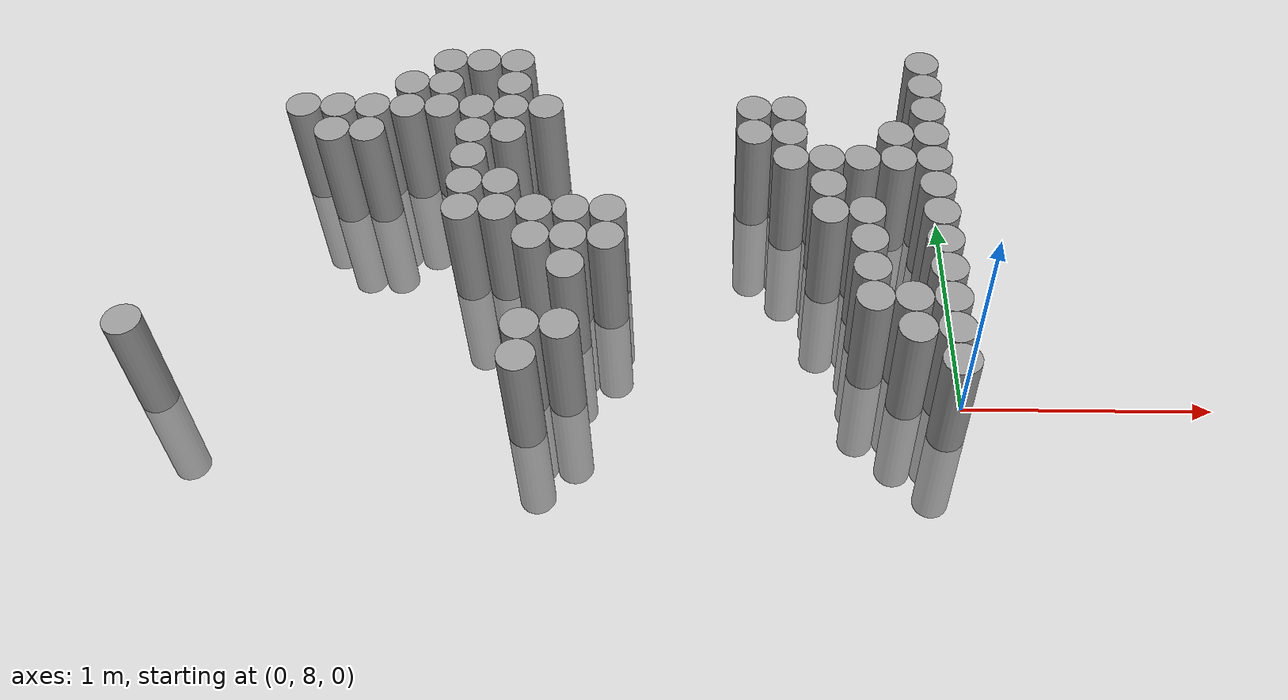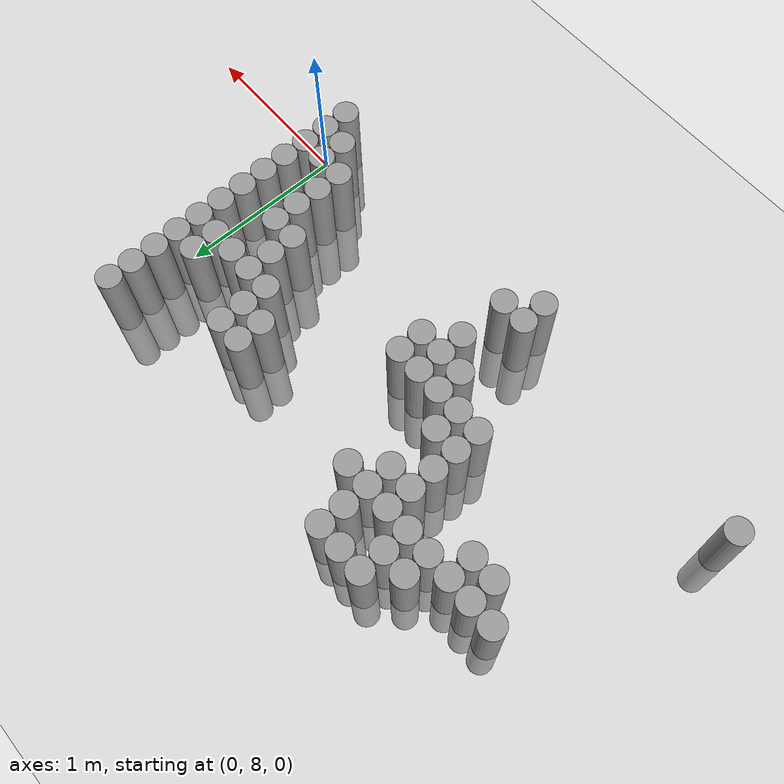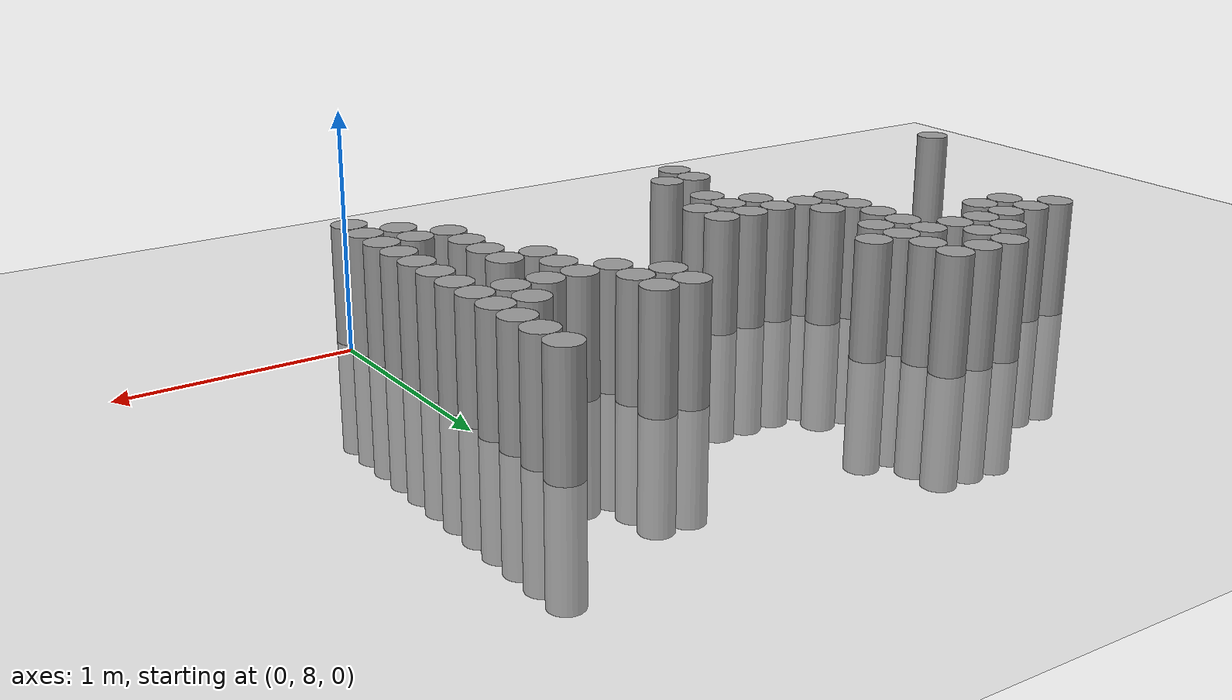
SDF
<sdf version="1.6">
 <world name="default">
  <model name="ground_plane">
   <static>1</static>
   <static>1</static>
   <link name="link">
    <collision name="collision">
     <geometry><plane><normal>0 0 1</normal><size>100 100</size></plane></geometry>
     <surface><friction><ode><mu>100</mu><mu2>50</mu2></ode></friction></surface>
    </collision>
    <visual name="visual">
     <cast_shadows>0</cast_shadows>
     <geometry><plane><normal>0 0 1</normal><size>100 100</size></plane></geometry>
     <material>
      <script><uri>file://media/materials/scripts/gazebo.material</uri><name>Gazebo/Grey</name></script>
     </material>
    </visual>
   </link>
  </model>
  <model name="unit_cylinder_170">
   <static>1</static>
   <pose>-3.225000 8.025000 0.000000 0.000000 0.000000 0.000000</pose>
   <link name="link">
    <inertial>
     <mass>1</mass>
     <inertia><ixx>0.145833</ixx><ixy>0</ixy><ixz>0</ixz><iyy>0.145833</iyy><iyz>0</iyz><izz>0.125</izz></inertia>
    </inertial>
    <collision name="collision">
     <geometry><cylinder><radius>0.075000</radius><length>1</length></cylinder></geometry>
    </collision>
    <visual name="visual">
     <geometry><cylinder><radius>0.075000</radius><length>1</length></cylinder></geometry>
     <material>
      <script><name>Gazebo/Grey</name><uri>file://media/materials/scripts/gazebo.material</uri></script>
     </material>
    </visual>
   </link>
  </model>
  <model name="unit_cylinder_180">
   <static>1</static>
   <pose>-2.775000 9.225000 0.000000 0.000000 0.000000 0.000000</pose>
   <link name="link">
    <inertial>
     <mass>1</mass>
     <inertia><ixx>0.145833</ixx><ixy>0</ixy><ixz>0</ixz><iyy>0.145833</iyy><iyz>0</iyz><izz>0.125</izz></inertia>
    </inertial>
    <collision name="collision">
     <geometry><cylinder><radius>0.075000</radius><length>1</length></cylinder></geometry>
    </collision>
    <visual name="visual">
     <geometry><cylinder><radius>0.075000</radius><length>1</length></cylinder></geometry>
     <material>
      <script><name>Gazebo/Grey</name><uri>file://media/materials/scripts/gazebo.material</uri></script>
     </material>
    </visual>
   </link>
  </model>
  <model name="unit_cylinder_183">
   <static>1</static>
   <pose>-2.625000 9.075000 0.000000 0.000000 0.000000 0.000000</pose>
   <link name="link">
    <inertial>
     <mass>1</mass>
     <inertia><ixx>0.145833</ixx><ixy>0</ixy><ixz>0</ixz><iyy>0.145833</iyy><iyz>0</iyz><izz>0.125</izz></inertia>
    </inertial>
    <collision name="collision">
     <geometry><cylinder><radius>0.075000</radius><length>1</length></cylinder></geometry>
    </collision>
    <visual name="visual">
     <geometry><cylinder><radius>0.075000</radius><length>1</length></cylinder></geometry>
     <material>
      <script><name>Gazebo/Grey</name><uri>file://media/materials/scripts/gazebo.material</uri></script>
     </material>
    </visual>
   </link>
  </model>
  <model name="unit_cylinder_184">
   <static>1</static>
   <pose>-2.625000 9.225000 0.000000 0.000000 0.000000 0.000000</pose>
   <link name="link">
    <inertial>
     <mass>1</mass>
     <inertia><ixx>0.145833</ixx><ixy>0</ixy><ixz>0</ixz><iyy>0.145833</iyy><iyz>0</iyz><izz>0.125</izz></inertia>
    </inertial>
    <collision name="collision">
     <geometry><cylinder><radius>0.075000</radius><length>1</length></cylinder></geometry>
    </collision>
    <visual name="visual">
     <geometry><cylinder><radius>0.075000</radius><length>1</length></cylinder></geometry>
     <material>
      <script><name>Gazebo/Grey</name><uri>file://media/materials/scripts/gazebo.material</uri></script>
     </material>
    </visual>
   </link>
  </model>
  <model name="unit_cylinder_186">
   <static>1</static>
   <pose>-2.475000 9.075000 0.000000 0.000000 0.000000 0.000000</pose>
   <link name="link">
    <inertial>
     <mass>1</mass>
     <inertia><ixx>0.145833</ixx><ixy>0</ixy><ixz>0</ixz><iyy>0.145833</iyy><iyz>0</iyz><izz>0.125</izz></inertia>
    </inertial>
    <collision name="collision">
     <geometry><cylinder><radius>0.075000</radius><length>1</length></cylinder></geometry>
    </collision>
    <visual name="visual">
     <geometry><cylinder><radius>0.075000</radius><length>1</length></cylinder></geometry>
     <material>
      <script><name>Gazebo/Grey</name><uri>file://media/materials/scripts/gazebo.material</uri></script>
     </material>
    </visual>
   </link>
  </model>
  <model name="unit_cylinder_187">
   <static>1</static>
   <pose>-2.475000 9.225000 0.000000 0.000000 0.000000 0.000000</pose>
   <link name="link">
    <inertial>
     <mass>1</mass>
     <inertia><ixx>0.145833</ixx><ixy>0</ixy><ixz>0</ixz><iyy>0.145833</iyy><iyz>0</iyz><izz>0.125</izz></inertia>
    </inertial>
    <collision name="collision">
     <geometry><cylinder><radius>0.075000</radius><length>1</length></cylinder></geometry>
    </collision>
    <visual name="visual">
     <geometry><cylinder><radius>0.075000</radius><length>1</length></cylinder></geometry>
     <material>
      <script><name>Gazebo/Grey</name><uri>file://media/materials/scripts/gazebo.material</uri></script>
     </material>
    </visual>
   </link>
  </model>
  <model name="unit_cylinder_192">
   <static>1</static>
   <pose>-2.325000 9.225000 0.000000 0.000000 0.000000 0.000000</pose>
   <link name="link">
    <inertial>
     <mass>1</mass>
     <inertia><ixx>0.145833</ixx><ixy>0</ixy><ixz>0</ixz><iyy>0.145833</iyy><iyz>0</iyz><izz>0.125</izz></inertia>
    </inertial>
    <collision name="collision">
     <geometry><cylinder><radius>0.075000</radius><length>1</length></cylinder></geometry>
    </collision>
    <visual name="visual">
     <geometry><cylinder><radius>0.075000</radius><length>1</length></cylinder></geometry>
     <material>
      <script><name>Gazebo/Grey</name><uri>file://media/materials/scripts/gazebo.material</uri></script>
     </material>
    </visual>
   </link>
  </model>
  <model name="unit_cylinder_193">
   <static>1</static>
   <pose>-2.325000 9.375000 0.000000 0.000000 0.000000 0.000000</pose>
   <link name="link">
    <inertial>
     <mass>1</mass>
     <inertia><ixx>0.145833</ixx><ixy>0</ixy><ixz>0</ixz><iyy>0.145833</iyy><iyz>0</iyz><izz>0.125</izz></inertia>
    </inertial>
    <collision name="collision">
     <geometry><cylinder><radius>0.075000</radius><length>1</length></cylinder></geometry>
    </collision>
    <visual name="visual">
     <geometry><cylinder><radius>0.075000</radius><length>1</length></cylinder></geometry>
     <material>
      <script><name>Gazebo/Grey</name><uri>file://media/materials/scripts/gazebo.material</uri></script>
     </material>
    </visual>
   </link>
  </model>
  <model name="unit_cylinder_201">
   <static>1</static>
   <pose>-2.175000 9.225000 0.000000 0.000000 0.000000 0.000000</pose>
   <link name="link">
    <inertial>
     <mass>1</mass>
     <inertia><ixx>0.145833</ixx><ixy>0</ixy><ixz>0</ixz><iyy>0.145833</iyy><iyz>0</iyz><izz>0.125</izz></inertia>
    </inertial>
    <collision name="collision">
     <geometry><cylinder><radius>0.075000</radius><length>1</length></cylinder></geometry>
    </collision>
    <visual name="visual">
     <geometry><cylinder><radius>0.075000</radius><length>1</length></cylinder></geometry>
     <material>
      <script><name>Gazebo/Grey</name><uri>file://media/materials/scripts/gazebo.material</uri></script>
     </material>
    </visual>
   </link>
  </model>
  <model name="unit_cylinder_202">
   <static>1</static>
   <pose>-2.175000 9.375000 0.000000 0.000000 0.000000 0.000000</pose>
   <link name="link">
    <inertial>
     <mass>1</mass>
     <inertia><ixx>0.145833</ixx><ixy>0</ixy><ixz>0</ixz><iyy>0.145833</iyy><iyz>0</iyz><izz>0.125</izz></inertia>
    </inertial>
    <collision name="collision">
     <geometry><cylinder><radius>0.075000</radius><length>1</length></cylinder></geometry>
    </collision>
    <visual name="visual">
     <geometry><cylinder><radius>0.075000</radius><length>1</length></cylinder></geometry>
     <material>
      <script><name>Gazebo/Grey</name><uri>file://media/materials/scripts/gazebo.material</uri></script>
     </material>
    </visual>
   </link>
  </model>
  <model name="unit_cylinder_203">
   <static>1</static>
   <pose>-2.175000 9.525000 0.000000 0.000000 0.000000 0.000000</pose>
   <link name="link">
    <inertial>
     <mass>1</mass>
     <inertia><ixx>0.145833</ixx><ixy>0</ixy><ixz>0</ixz><iyy>0.145833</iyy><iyz>0</iyz><izz>0.125</izz></inertia>
    </inertial>
    <collision name="collision">
     <geometry><cylinder><radius>0.075000</radius><length>1</length></cylinder></geometry>
    </collision>
    <visual name="visual">
     <geometry><cylinder><radius>0.075000</radius><length>1</length></cylinder></geometry>
     <material>
      <script><name>Gazebo/Grey</name><uri>file://media/materials/scripts/gazebo.material</uri></script>
     </material>
    </visual>
   </link>
  </model>
  <model name="unit_cylinder_210">
   <static>1</static>
   <pose>-2.025000 8.625000 0.000000 0.000000 0.000000 0.000000</pose>
   <link name="link">
    <inertial>
     <mass>1</mass>
     <inertia><ixx>0.145833</ixx><ixy>0</ixy><ixz>0</ixz><iyy>0.145833</iyy><iyz>0</iyz><izz>0.125</izz></inertia>
    </inertial>
    <collision name="collision">
     <geometry><cylinder><radius>0.075000</radius><length>1</length></cylinder></geometry>
    </collision>
    <visual name="visual">
     <geometry><cylinder><radius>0.075000</radius><length>1</length></cylinder></geometry>
     <material>
      <script><name>Gazebo/Grey</name><uri>file://media/materials/scripts/gazebo.material</uri></script>
     </material>
    </visual>
   </link>
  </model>
  <model name="unit_cylinder_211">
   <static>1</static>
   <pose>-2.025000 8.775000 0.000000 0.000000 0.000000 0.000000</pose>
   <link name="link">
    <inertial>
     <mass>1</mass>
     <inertia><ixx>0.145833</ixx><ixy>0</ixy><ixz>0</ixz><iyy>0.145833</iyy><iyz>0</iyz><izz>0.125</izz></inertia>
    </inertial>
    <collision name="collision">
     <geometry><cylinder><radius>0.075000</radius><length>1</length></cylinder></geometry>
    </collision>
    <visual name="visual">
     <geometry><cylinder><radius>0.075000</radius><length>1</length></cylinder></geometry>
     <material>
      <script><name>Gazebo/Grey</name><uri>file://media/materials/scripts/gazebo.material</uri></script>
     </material>
    </visual>
   </link>
  </model>
  <model name="unit_cylinder_212">
   <static>1</static>
   <pose>-2.025000 8.925000 0.000000 0.000000 0.000000 0.000000</pose>
   <link name="link">
    <inertial>
     <mass>1</mass>
     <inertia><ixx>0.145833</ixx><ixy>0</ixy><ixz>0</ixz><iyy>0.145833</iyy><iyz>0</iyz><izz>0.125</izz></inertia>
    </inertial>
    <collision name="collision">
     <geometry><cylinder><radius>0.075000</radius><length>1</length></cylinder></geometry>
    </collision>
    <visual name="visual">
     <geometry><cylinder><radius>0.075000</radius><length>1</length></cylinder></geometry>
     <material>
      <script><name>Gazebo/Grey</name><uri>file://media/materials/scripts/gazebo.material</uri></script>
     </material>
    </visual>
   </link>
  </model>
  <model name="unit_cylinder_213">
   <static>1</static>
   <pose>-2.025000 9.075000 0.000000 0.000000 0.000000 0.000000</pose>
   <link name="link">
    <inertial>
     <mass>1</mass>
     <inertia><ixx>0.145833</ixx><ixy>0</ixy><ixz>0</ixz><iyy>0.145833</iyy><iyz>0</iyz><izz>0.125</izz></inertia>
    </inertial>
    <collision name="collision">
     <geometry><cylinder><radius>0.075000</radius><length>1</length></cylinder></geometry>
    </collision>
    <visual name="visual">
     <geometry><cylinder><radius>0.075000</radius><length>1</length></cylinder></geometry>
     <material>
      <script><name>Gazebo/Grey</name><uri>file://media/materials/scripts/gazebo.material</uri></script>
     </material>
    </visual>
   </link>
  </model>
  <model name="unit_cylinder_214">
   <static>1</static>
   <pose>-2.025000 9.225000 0.000000 0.000000 0.000000 0.000000</pose>
   <link name="link">
    <inertial>
     <mass>1</mass>
     <inertia><ixx>0.145833</ixx><ixy>0</ixy><ixz>0</ixz><iyy>0.145833</iyy><iyz>0</iyz><izz>0.125</izz></inertia>
    </inertial>
    <collision name="collision">
     <geometry><cylinder><radius>0.075000</radius><length>1</length></cylinder></geometry>
    </collision>
    <visual name="visual">
     <geometry><cylinder><radius>0.075000</radius><length>1</length></cylinder></geometry>
     <material>
      <script><name>Gazebo/Grey</name><uri>file://media/materials/scripts/gazebo.material</uri></script>
     </material>
    </visual>
   </link>
  </model>
  <model name="unit_cylinder_215">
   <static>1</static>
   <pose>-2.025000 9.525000 0.000000 0.000000 0.000000 0.000000</pose>
   <link name="link">
    <inertial>
     <mass>1</mass>
     <inertia><ixx>0.145833</ixx><ixy>0</ixy><ixz>0</ixz><iyy>0.145833</iyy><iyz>0</iyz><izz>0.125</izz></inertia>
    </inertial>
    <collision name="collision">
     <geometry><cylinder><radius>0.075000</radius><length>1</length></cylinder></geometry>
    </collision>
    <visual name="visual">
     <geometry><cylinder><radius>0.075000</radius><length>1</length></cylinder></geometry>
     <material>
      <script><name>Gazebo/Grey</name><uri>file://media/materials/scripts/gazebo.material</uri></script>
     </material>
    </visual>
   </link>
  </model>
  <model name="unit_cylinder_222">
   <static>1</static>
   <pose>-1.875000 8.625000 0.000000 0.000000 0.000000 0.000000</pose>
   <link name="link">
    <inertial>
     <mass>1</mass>
     <inertia><ixx>0.145833</ixx><ixy>0</ixy><ixz>0</ixz><iyy>0.145833</iyy><iyz>0</iyz><izz>0.125</izz></inertia>
    </inertial>
    <collision name="collision">
     <geometry><cylinder><radius>0.075000</radius><length>1</length></cylinder></geometry>
    </collision>
    <visual name="visual">
     <geometry><cylinder><radius>0.075000</radius><length>1</length></cylinder></geometry>
     <material>
      <script><name>Gazebo/Grey</name><uri>file://media/materials/scripts/gazebo.material</uri></script>
     </material>
    </visual>
   </link>
  </model>
  <model name="unit_cylinder_223">
   <static>1</static>
   <pose>-1.875000 8.775000 0.000000 0.000000 0.000000 0.000000</pose>
   <link name="link">
    <inertial>
     <mass>1</mass>
     <inertia><ixx>0.145833</ixx><ixy>0</ixy><ixz>0</ixz><iyy>0.145833</iyy><iyz>0</iyz><izz>0.125</izz></inertia>
    </inertial>
    <collision name="collision">
     <geometry><cylinder><radius>0.075000</radius><length>1</length></cylinder></geometry>
    </collision>
    <visual name="visual">
     <geometry><cylinder><radius>0.075000</radius><length>1</length></cylinder></geometry>
     <material>
      <script><name>Gazebo/Grey</name><uri>file://media/materials/scripts/gazebo.material</uri></script>
     </material>
    </visual>
   </link>
  </model>
  <model name="unit_cylinder_224">
   <static>1</static>
   <pose>-1.875000 9.075000 0.000000 0.000000 0.000000 0.000000</pose>
   <link name="link">
    <inertial>
     <mass>1</mass>
     <inertia><ixx>0.145833</ixx><ixy>0</ixy><ixz>0</ixz><iyy>0.145833</iyy><iyz>0</iyz><izz>0.125</izz></inertia>
    </inertial>
    <collision name="collision">
     <geometry><cylinder><radius>0.075000</radius><length>1</length></cylinder></geometry>
    </collision>
    <visual name="visual">
     <geometry><cylinder><radius>0.075000</radius><length>1</length></cylinder></geometry>
     <material>
      <script><name>Gazebo/Grey</name><uri>file://media/materials/scripts/gazebo.material</uri></script>
     </material>
    </visual>
   </link>
  </model>
  <model name="unit_cylinder_225">
   <static>1</static>
   <pose>-1.875000 9.225000 0.000000 0.000000 0.000000 0.000000</pose>
   <link name="link">
    <inertial>
     <mass>1</mass>
     <inertia><ixx>0.145833</ixx><ixy>0</ixy><ixz>0</ixz><iyy>0.145833</iyy><iyz>0</iyz><izz>0.125</izz></inertia>
    </inertial>
    <collision name="collision">
     <geometry><cylinder><radius>0.075000</radius><length>1</length></cylinder></geometry>
    </collision>
    <visual name="visual">
     <geometry><cylinder><radius>0.075000</radius><length>1</length></cylinder></geometry>
     <material>
      <script><name>Gazebo/Grey</name><uri>file://media/materials/scripts/gazebo.material</uri></script>
     </material>
    </visual>
   </link>
  </model>
  <model name="unit_cylinder_226">
   <static>1</static>
   <pose>-1.875000 9.375000 0.000000 0.000000 0.000000 0.000000</pose>
   <link name="link">
    <inertial>
     <mass>1</mass>
     <inertia><ixx>0.145833</ixx><ixy>0</ixy><ixz>0</ixz><iyy>0.145833</iyy><iyz>0</iyz><izz>0.125</izz></inertia>
    </inertial>
    <collision name="collision">
     <geometry><cylinder><radius>0.075000</radius><length>1</length></cylinder></geometry>
    </collision>
    <visual name="visual">
     <geometry><cylinder><radius>0.075000</radius><length>1</length></cylinder></geometry>
     <material>
      <script><name>Gazebo/Grey</name><uri>file://media/materials/scripts/gazebo.material</uri></script>
     </material>
    </visual>
   </link>
  </model>
  <model name="unit_cylinder_227">
   <static>1</static>
   <pose>-1.875000 9.525000 0.000000 0.000000 0.000000 0.000000</pose>
   <link name="link">
    <inertial>
     <mass>1</mass>
     <inertia><ixx>0.145833</ixx><ixy>0</ixy><ixz>0</ixz><iyy>0.145833</iyy><iyz>0</iyz><izz>0.125</izz></inertia>
    </inertial>
    <collision name="collision">
     <geometry><cylinder><radius>0.075000</radius><length>1</length></cylinder></geometry>
    </collision>
    <visual name="visual">
     <geometry><cylinder><radius>0.075000</radius><length>1</length></cylinder></geometry>
     <material>
      <script><name>Gazebo/Grey</name><uri>file://media/materials/scripts/gazebo.material</uri></script>
     </material>
    </visual>
   </link>
  </model>
  <model name="unit_cylinder_232">
   <static>1</static>
   <pose>-1.725000 7.875000 0.000000 0.000000 0.000000 0.000000</pose>
   <link name="link">
    <inertial>
     <mass>1</mass>
     <inertia><ixx>0.145833</ixx><ixy>0</ixy><ixz>0</ixz><iyy>0.145833</iyy><iyz>0</iyz><izz>0.125</izz></inertia>
    </inertial>
    <collision name="collision">
     <geometry><cylinder><radius>0.075000</radius><length>1</length></cylinder></geometry>
    </collision>
    <visual name="visual">
     <geometry><cylinder><radius>0.075000</radius><length>1</length></cylinder></geometry>
     <material>
      <script><name>Gazebo/Grey</name><uri>file://media/materials/scripts/gazebo.material</uri></script>
     </material>
    </visual>
   </link>
  </model>
  <model name="unit_cylinder_233">
   <static>1</static>
   <pose>-1.725000 8.025000 0.000000 0.000000 0.000000 0.000000</pose>
   <link name="link">
    <inertial>
     <mass>1</mass>
     <inertia><ixx>0.145833</ixx><ixy>0</ixy><ixz>0</ixz><iyy>0.145833</iyy><iyz>0</iyz><izz>0.125</izz></inertia>
    </inertial>
    <collision name="collision">
     <geometry><cylinder><radius>0.075000</radius><length>1</length></cylinder></geometry>
    </collision>
    <visual name="visual">
     <geometry><cylinder><radius>0.075000</radius><length>1</length></cylinder></geometry>
     <material>
      <script><name>Gazebo/Grey</name><uri>file://media/materials/scripts/gazebo.material</uri></script>
     </material>
    </visual>
   </link>
  </model>
  <model name="unit_cylinder_234">
   <static>1</static>
   <pose>-1.725000 8.475000 0.000000 0.000000 0.000000 0.000000</pose>
   <link name="link">
    <inertial>
     <mass>1</mass>
     <inertia><ixx>0.145833</ixx><ixy>0</ixy><ixz>0</ixz><iyy>0.145833</iyy><iyz>0</iyz><izz>0.125</izz></inertia>
    </inertial>
    <collision name="collision">
     <geometry><cylinder><radius>0.075000</radius><length>1</length></cylinder></geometry>
    </collision>
    <visual name="visual">
     <geometry><cylinder><radius>0.075000</radius><length>1</length></cylinder></geometry>
     <material>
      <script><name>Gazebo/Grey</name><uri>file://media/materials/scripts/gazebo.material</uri></script>
     </material>
    </visual>
   </link>
  </model>
  <model name="unit_cylinder_235">
   <static>1</static>
   <pose>-1.725000 8.625000 0.000000 0.000000 0.000000 0.000000</pose>
   <link name="link">
    <inertial>
     <mass>1</mass>
     <inertia><ixx>0.145833</ixx><ixy>0</ixy><ixz>0</ixz><iyy>0.145833</iyy><iyz>0</iyz><izz>0.125</izz></inertia>
    </inertial>
    <collision name="collision">
     <geometry><cylinder><radius>0.075000</radius><length>1</length></cylinder></geometry>
    </collision>
    <visual name="visual">
     <geometry><cylinder><radius>0.075000</radius><length>1</length></cylinder></geometry>
     <material>
      <script><name>Gazebo/Grey</name><uri>file://media/materials/scripts/gazebo.material</uri></script>
     </material>
    </visual>
   </link>
  </model>
  <model name="unit_cylinder_236">
   <static>1</static>
   <pose>-1.725000 9.225000 0.000000 0.000000 0.000000 0.000000</pose>
   <link name="link">
    <inertial>
     <mass>1</mass>
     <inertia><ixx>0.145833</ixx><ixy>0</ixy><ixz>0</ixz><iyy>0.145833</iyy><iyz>0</iyz><izz>0.125</izz></inertia>
    </inertial>
    <collision name="collision">
     <geometry><cylinder><radius>0.075000</radius><length>1</length></cylinder></geometry>
    </collision>
    <visual name="visual">
     <geometry><cylinder><radius>0.075000</radius><length>1</length></cylinder></geometry>
     <material>
      <script><name>Gazebo/Grey</name><uri>file://media/materials/scripts/gazebo.material</uri></script>
     </material>
    </visual>
   </link>
  </model>
  <model name="unit_cylinder_238">
   <static>1</static>
   <pose>-1.575000 8.025000 0.000000 0.000000 0.000000 0.000000</pose>
   <link name="link">
    <inertial>
     <mass>1</mass>
     <inertia><ixx>0.145833</ixx><ixy>0</ixy><ixz>0</ixz><iyy>0.145833</iyy><iyz>0</iyz><izz>0.125</izz></inertia>
    </inertial>
    <collision name="collision">
     <geometry><cylinder><radius>0.075000</radius><length>1</length></cylinder></geometry>
    </collision>
    <visual name="visual">
     <geometry><cylinder><radius>0.075000</radius><length>1</length></cylinder></geometry>
     <material>
      <script><name>Gazebo/Grey</name><uri>file://media/materials/scripts/gazebo.material</uri></script>
     </material>
    </visual>
   </link>
  </model>
  <model name="unit_cylinder_239">
   <static>1</static>
   <pose>-1.575000 8.325000 0.000000 0.000000 0.000000 0.000000</pose>
   <link name="link">
    <inertial>
     <mass>1</mass>
     <inertia><ixx>0.145833</ixx><ixy>0</ixy><ixz>0</ixz><iyy>0.145833</iyy><iyz>0</iyz><izz>0.125</izz></inertia>
    </inertial>
    <collision name="collision">
     <geometry><cylinder><radius>0.075000</radius><length>1</length></cylinder></geometry>
    </collision>
    <visual name="visual">
     <geometry><cylinder><radius>0.075000</radius><length>1</length></cylinder></geometry>
     <material>
      <script><name>Gazebo/Grey</name><uri>file://media/materials/scripts/gazebo.material</uri></script>
     </material>
    </visual>
   </link>
  </model>
  <model name="unit_cylinder_240">
   <static>1</static>
   <pose>-1.575000 8.475000 0.000000 0.000000 0.000000 0.000000</pose>
   <link name="link">
    <inertial>
     <mass>1</mass>
     <inertia><ixx>0.145833</ixx><ixy>0</ixy><ixz>0</ixz><iyy>0.145833</iyy><iyz>0</iyz><izz>0.125</izz></inertia>
    </inertial>
    <collision name="collision">
     <geometry><cylinder><radius>0.075000</radius><length>1</length></cylinder></geometry>
    </collision>
    <visual name="visual">
     <geometry><cylinder><radius>0.075000</radius><length>1</length></cylinder></geometry>
     <material>
      <script><name>Gazebo/Grey</name><uri>file://media/materials/scripts/gazebo.material</uri></script>
     </material>
    </visual>
   </link>
  </model>
  <model name="unit_cylinder_241">
   <static>1</static>
   <pose>-1.575000 8.625000 0.000000 0.000000 0.000000 0.000000</pose>
   <link name="link">
    <inertial>
     <mass>1</mass>
     <inertia><ixx>0.145833</ixx><ixy>0</ixy><ixz>0</ixz><iyy>0.145833</iyy><iyz>0</iyz><izz>0.125</izz></inertia>
    </inertial>
    <collision name="collision">
     <geometry><cylinder><radius>0.075000</radius><length>1</length></cylinder></geometry>
    </collision>
    <visual name="visual">
     <geometry><cylinder><radius>0.075000</radius><length>1</length></cylinder></geometry>
     <material>
      <script><name>Gazebo/Grey</name><uri>file://media/materials/scripts/gazebo.material</uri></script>
     </material>
    </visual>
   </link>
  </model>
  <model name="unit_cylinder_242">
   <static>1</static>
   <pose>-1.425000 8.475000 0.000000 0.000000 0.000000 0.000000</pose>
   <link name="link">
    <inertial>
     <mass>1</mass>
     <inertia><ixx>0.145833</ixx><ixy>0</ixy><ixz>0</ixz><iyy>0.145833</iyy><iyz>0</iyz><izz>0.125</izz></inertia>
    </inertial>
    <collision name="collision">
     <geometry><cylinder><radius>0.075000</radius><length>1</length></cylinder></geometry>
    </collision>
    <visual name="visual">
     <geometry><cylinder><radius>0.075000</radius><length>1</length></cylinder></geometry>
     <material>
      <script><name>Gazebo/Grey</name><uri>file://media/materials/scripts/gazebo.material</uri></script>
     </material>
    </visual>
   </link>
  </model>
  <model name="unit_cylinder_243">
   <static>1</static>
   <pose>-1.425000 8.625000 0.000000 0.000000 0.000000 0.000000</pose>
   <link name="link">
    <inertial>
     <mass>1</mass>
     <inertia><ixx>0.145833</ixx><ixy>0</ixy><ixz>0</ixz><iyy>0.145833</iyy><iyz>0</iyz><izz>0.125</izz></inertia>
    </inertial>
    <collision name="collision">
     <geometry><cylinder><radius>0.075000</radius><length>1</length></cylinder></geometry>
    </collision>
    <visual name="visual">
     <geometry><cylinder><radius>0.075000</radius><length>1</length></cylinder></geometry>
     <material>
      <script><name>Gazebo/Grey</name><uri>file://media/materials/scripts/gazebo.material</uri></script>
     </material>
    </visual>
   </link>
  </model>
  <model name="unit_cylinder_248">
   <static>1</static>
   <pose>-0.825000 9.075000 0.000000 0.000000 0.000000 0.000000</pose>
   <link name="link">
    <inertial>
     <mass>1</mass>
     <inertia><ixx>0.145833</ixx><ixy>0</ixy><ixz>0</ixz><iyy>0.145833</iyy><iyz>0</iyz><izz>0.125</izz></inertia>
    </inertial>
    <collision name="collision">
     <geometry><cylinder><radius>0.075000</radius><length>1</length></cylinder></geometry>
    </collision>
    <visual name="visual">
     <geometry><cylinder><radius>0.075000</radius><length>1</length></cylinder></geometry>
     <material>
      <script><name>Gazebo/Grey</name><uri>file://media/materials/scripts/gazebo.material</uri></script>
     </material>
    </visual>
   </link>
  </model>
  <model name="unit_cylinder_249">
   <static>1</static>
   <pose>-0.825000 9.225000 0.000000 0.000000 0.000000 0.000000</pose>
   <link name="link">
    <inertial>
     <mass>1</mass>
     <inertia><ixx>0.145833</ixx><ixy>0</ixy><ixz>0</ixz><iyy>0.145833</iyy><iyz>0</iyz><izz>0.125</izz></inertia>
    </inertial>
    <collision name="collision">
     <geometry><cylinder><radius>0.075000</radius><length>1</length></cylinder></geometry>
    </collision>
    <visual name="visual">
     <geometry><cylinder><radius>0.075000</radius><length>1</length></cylinder></geometry>
     <material>
      <script><name>Gazebo/Grey</name><uri>file://media/materials/scripts/gazebo.material</uri></script>
     </material>
    </visual>
   </link>
  </model>
  <model name="unit_cylinder_255">
   <static>1</static>
   <pose>-0.675000 8.925000 0.000000 0.000000 0.000000 0.000000</pose>
   <link name="link">
    <inertial>
     <mass>1</mass>
     <inertia><ixx>0.145833</ixx><ixy>0</ixy><ixz>0</ixz><iyy>0.145833</iyy><iyz>0</iyz><izz>0.125</izz></inertia>
    </inertial>
    <collision name="collision">
     <geometry><cylinder><radius>0.075000</radius><length>1</length></cylinder></geometry>
    </collision>
    <visual name="visual">
     <geometry><cylinder><radius>0.075000</radius><length>1</length></cylinder></geometry>
     <material>
      <script><name>Gazebo/Grey</name><uri>file://media/materials/scripts/gazebo.material</uri></script>
     </material>
    </visual>
   </link>
  </model>
  <model name="unit_cylinder_256">
   <static>1</static>
   <pose>-0.675000 9.075000 0.000000 0.000000 0.000000 0.000000</pose>
   <link name="link">
    <inertial>
     <mass>1</mass>
     <inertia><ixx>0.145833</ixx><ixy>0</ixy><ixz>0</ixz><iyy>0.145833</iyy><iyz>0</iyz><izz>0.125</izz></inertia>
    </inertial>
    <collision name="collision">
     <geometry><cylinder><radius>0.075000</radius><length>1</length></cylinder></geometry>
    </collision>
    <visual name="visual">
     <geometry><cylinder><radius>0.075000</radius><length>1</length></cylinder></geometry>
     <material>
      <script><name>Gazebo/Grey</name><uri>file://media/materials/scripts/gazebo.material</uri></script>
     </material>
    </visual>
   </link>
  </model>
  <model name="unit_cylinder_257">
   <static>1</static>
   <pose>-0.675000 9.225000 0.000000 0.000000 0.000000 0.000000</pose>
   <link name="link">
    <inertial>
     <mass>1</mass>
     <inertia><ixx>0.145833</ixx><ixy>0</ixy><ixz>0</ixz><iyy>0.145833</iyy><iyz>0</iyz><izz>0.125</izz></inertia>
    </inertial>
    <collision name="collision">
     <geometry><cylinder><radius>0.075000</radius><length>1</length></cylinder></geometry>
    </collision>
    <visual name="visual">
     <geometry><cylinder><radius>0.075000</radius><length>1</length></cylinder></geometry>
     <material>
      <script><name>Gazebo/Grey</name><uri>file://media/materials/scripts/gazebo.material</uri></script>
     </material>
    </visual>
   </link>
  </model>
  <model name="unit_cylinder_260">
   <static>1</static>
   <pose>-0.525000 8.625000 0.000000 0.000000 0.000000 0.000000</pose>
   <link name="link">
    <inertial>
     <mass>1</mass>
     <inertia><ixx>0.145833</ixx><ixy>0</ixy><ixz>0</ixz><iyy>0.145833</iyy><iyz>0</iyz><izz>0.125</izz></inertia>
    </inertial>
    <collision name="collision">
     <geometry><cylinder><radius>0.075000</radius><length>1</length></cylinder></geometry>
    </collision>
    <visual name="visual">
     <geometry><cylinder><radius>0.075000</radius><length>1</length></cylinder></geometry>
     <material>
      <script><name>Gazebo/Grey</name><uri>file://media/materials/scripts/gazebo.material</uri></script>
     </material>
    </visual>
   </link>
  </model>
  <model name="unit_cylinder_261">
   <static>1</static>
   <pose>-0.525000 8.775000 0.000000 0.000000 0.000000 0.000000</pose>
   <link name="link">
    <inertial>
     <mass>1</mass>
     <inertia><ixx>0.145833</ixx><ixy>0</ixy><ixz>0</ixz><iyy>0.145833</iyy><iyz>0</iyz><izz>0.125</izz></inertia>
    </inertial>
    <collision name="collision">
     <geometry><cylinder><radius>0.075000</radius><length>1</length></cylinder></geometry>
    </collision>
    <visual name="visual">
     <geometry><cylinder><radius>0.075000</radius><length>1</length></cylinder></geometry>
     <material>
      <script><name>Gazebo/Grey</name><uri>file://media/materials/scripts/gazebo.material</uri></script>
     </material>
    </visual>
   </link>
  </model>
  <model name="unit_cylinder_262">
   <static>1</static>
   <pose>-0.525000 8.925000 0.000000 0.000000 0.000000 0.000000</pose>
   <link name="link">
    <inertial>
     <mass>1</mass>
     <inertia><ixx>0.145833</ixx><ixy>0</ixy><ixz>0</ixz><iyy>0.145833</iyy><iyz>0</iyz><izz>0.125</izz></inertia>
    </inertial>
    <collision name="collision">
     <geometry><cylinder><radius>0.075000</radius><length>1</length></cylinder></geometry>
    </collision>
    <visual name="visual">
     <geometry><cylinder><radius>0.075000</radius><length>1</length></cylinder></geometry>
     <material>
      <script><name>Gazebo/Grey</name><uri>file://media/materials/scripts/gazebo.material</uri></script>
     </material>
    </visual>
   </link>
  </model>
  <model name="unit_cylinder_266">
   <static>1</static>
   <pose>-0.375000 8.175000 0.000000 0.000000 0.000000 0.000000</pose>
   <link name="link">
    <inertial>
     <mass>1</mass>
     <inertia><ixx>0.145833</ixx><ixy>0</ixy><ixz>0</ixz><iyy>0.145833</iyy><iyz>0</iyz><izz>0.125</izz></inertia>
    </inertial>
    <collision name="collision">
     <geometry><cylinder><radius>0.075000</radius><length>1</length></cylinder></geometry>
    </collision>
    <visual name="visual">
     <geometry><cylinder><radius>0.075000</radius><length>1</length></cylinder></geometry>
     <material>
      <script><name>Gazebo/Grey</name><uri>file://media/materials/scripts/gazebo.material</uri></script>
     </material>
    </visual>
   </link>
  </model>
  <model name="unit_cylinder_267">
   <static>1</static>
   <pose>-0.375000 8.325000 0.000000 0.000000 0.000000 0.000000</pose>
   <link name="link">
    <inertial>
     <mass>1</mass>
     <inertia><ixx>0.145833</ixx><ixy>0</ixy><ixz>0</ixz><iyy>0.145833</iyy><iyz>0</iyz><izz>0.125</izz></inertia>
    </inertial>
    <collision name="collision">
     <geometry><cylinder><radius>0.075000</radius><length>1</length></cylinder></geometry>
    </collision>
    <visual name="visual">
     <geometry><cylinder><radius>0.075000</radius><length>1</length></cylinder></geometry>
     <material>
      <script><name>Gazebo/Grey</name><uri>file://media/materials/scripts/gazebo.material</uri></script>
     </material>
    </visual>
   </link>
  </model>
  <model name="unit_cylinder_268">
   <static>1</static>
   <pose>-0.375000 8.475000 0.000000 0.000000 0.000000 0.000000</pose>
   <link name="link">
    <inertial>
     <mass>1</mass>
     <inertia><ixx>0.145833</ixx><ixy>0</ixy><ixz>0</ixz><iyy>0.145833</iyy><iyz>0</iyz><izz>0.125</izz></inertia>
    </inertial>
    <collision name="collision">
     <geometry><cylinder><radius>0.075000</radius><length>1</length></cylinder></geometry>
    </collision>
    <visual name="visual">
     <geometry><cylinder><radius>0.075000</radius><length>1</length></cylinder></geometry>
     <material>
      <script><name>Gazebo/Grey</name><uri>file://media/materials/scripts/gazebo.material</uri></script>
     </material>
    </visual>
   </link>
  </model>
  <model name="unit_cylinder_269">
   <static>1</static>
   <pose>-0.375000 8.625000 0.000000 0.000000 0.000000 0.000000</pose>
   <link name="link">
    <inertial>
     <mass>1</mass>
     <inertia><ixx>0.145833</ixx><ixy>0</ixy><ixz>0</ixz><iyy>0.145833</iyy><iyz>0</iyz><izz>0.125</izz></inertia>
    </inertial>
    <collision name="collision">
     <geometry><cylinder><radius>0.075000</radius><length>1</length></cylinder></geometry>
    </collision>
    <visual name="visual">
     <geometry><cylinder><radius>0.075000</radius><length>1</length></cylinder></geometry>
     <material>
      <script><name>Gazebo/Grey</name><uri>file://media/materials/scripts/gazebo.material</uri></script>
     </material>
    </visual>
   </link>
  </model>
  <model name="unit_cylinder_270">
   <static>1</static>
   <pose>-0.375000 8.925000 0.000000 0.000000 0.000000 0.000000</pose>
   <link name="link">
    <inertial>
     <mass>1</mass>
     <inertia><ixx>0.145833</ixx><ixy>0</ixy><ixz>0</ixz><iyy>0.145833</iyy><iyz>0</iyz><izz>0.125</izz></inertia>
    </inertial>
    <collision name="collision">
     <geometry><cylinder><radius>0.075000</radius><length>1</length></cylinder></geometry>
    </collision>
    <visual name="visual">
     <geometry><cylinder><radius>0.075000</radius><length>1</length></cylinder></geometry>
     <material>
      <script><name>Gazebo/Grey</name><uri>file://media/materials/scripts/gazebo.material</uri></script>
     </material>
    </visual>
   </link>
  </model>
  <model name="unit_cylinder_278">
   <static>1</static>
   <pose>-0.225000 8.025000 0.000000 0.000000 0.000000 0.000000</pose>
   <link name="link">
    <inertial>
     <mass>1</mass>
     <inertia><ixx>0.145833</ixx><ixy>0</ixy><ixz>0</ixz><iyy>0.145833</iyy><iyz>0</iyz><izz>0.125</izz></inertia>
    </inertial>
    <collision name="collision">
     <geometry><cylinder><radius>0.075000</radius><length>1</length></cylinder></geometry>
    </collision>
    <visual name="visual">
     <geometry><cylinder><radius>0.075000</radius><length>1</length></cylinder></geometry>
     <material>
      <script><name>Gazebo/Grey</name><uri>file://media/materials/scripts/gazebo.material</uri></script>
     </material>
    </visual>
   </link>
  </model>
  <model name="unit_cylinder_279">
   <static>1</static>
   <pose>-0.225000 8.175000 0.000000 0.000000 0.000000 0.000000</pose>
   <link name="link">
    <inertial>
     <mass>1</mass>
     <inertia><ixx>0.145833</ixx><ixy>0</ixy><ixz>0</ixz><iyy>0.145833</iyy><iyz>0</iyz><izz>0.125</izz></inertia>
    </inertial>
    <collision name="collision">
     <geometry><cylinder><radius>0.075000</radius><length>1</length></cylinder></geometry>
    </collision>
    <visual name="visual">
     <geometry><cylinder><radius>0.075000</radius><length>1</length></cylinder></geometry>
     <material>
      <script><name>Gazebo/Grey</name><uri>file://media/materials/scripts/gazebo.material</uri></script>
     </material>
    </visual>
   </link>
  </model>
  <model name="unit_cylinder_280">
   <static>1</static>
   <pose>-0.225000 8.925000 0.000000 0.000000 0.000000 0.000000</pose>
   <link name="link">
    <inertial>
     <mass>1</mass>
     <inertia><ixx>0.145833</ixx><ixy>0</ixy><ixz>0</ixz><iyy>0.145833</iyy><iyz>0</iyz><izz>0.125</izz></inertia>
    </inertial>
    <collision name="collision">
     <geometry><cylinder><radius>0.075000</radius><length>1</length></cylinder></geometry>
    </collision>
    <visual name="visual">
     <geometry><cylinder><radius>0.075000</radius><length>1</length></cylinder></geometry>
     <material>
      <script><name>Gazebo/Grey</name><uri>file://media/materials/scripts/gazebo.material</uri></script>
     </material>
    </visual>
   </link>
  </model>
  <model name="unit_cylinder_281">
   <static>1</static>
   <pose>-0.225000 9.075000 0.000000 0.000000 0.000000 0.000000</pose>
   <link name="link">
    <inertial>
     <mass>1</mass>
     <inertia><ixx>0.145833</ixx><ixy>0</ixy><ixz>0</ixz><iyy>0.145833</iyy><iyz>0</iyz><izz>0.125</izz></inertia>
    </inertial>
    <collision name="collision">
     <geometry><cylinder><radius>0.075000</radius><length>1</length></cylinder></geometry>
    </collision>
    <visual name="visual">
     <geometry><cylinder><radius>0.075000</radius><length>1</length></cylinder></geometry>
     <material>
      <script><name>Gazebo/Grey</name><uri>file://media/materials/scripts/gazebo.material</uri></script>
     </material>
    </visual>
   </link>
  </model>
  <model name="unit_cylinder_300">
   <static>1</static>
   <pose>-0.075000 7.875000 0.000000 0.000000 0.000000 0.000000</pose>
   <link name="link">
    <inertial>
     <mass>1</mass>
     <inertia><ixx>0.145833</ixx><ixy>0</ixy><ixz>0</ixz><iyy>0.145833</iyy><iyz>0</iyz><izz>0.125</izz></inertia>
    </inertial>
    <collision name="collision">
     <geometry><cylinder><radius>0.075000</radius><length>1</length></cylinder></geometry>
    </collision>
    <visual name="visual">
     <geometry><cylinder><radius>0.075000</radius><length>1</length></cylinder></geometry>
     <material>
      <script><name>Gazebo/Grey</name><uri>file://media/materials/scripts/gazebo.material</uri></script>
     </material>
    </visual>
   </link>
  </model>
  <model name="unit_cylinder_301">
   <static>1</static>
   <pose>-0.075000 8.025000 0.000000 0.000000 0.000000 0.000000</pose>
   <link name="link">
    <inertial>
     <mass>1</mass>
     <inertia><ixx>0.145833</ixx><ixy>0</ixy><ixz>0</ixz><iyy>0.145833</iyy><iyz>0</iyz><izz>0.125</izz></inertia>
    </inertial>
    <collision name="collision">
     <geometry><cylinder><radius>0.075000</radius><length>1</length></cylinder></geometry>
    </collision>
    <visual name="visual">
     <geometry><cylinder><radius>0.075000</radius><length>1</length></cylinder></geometry>
     <material>
      <script><name>Gazebo/Grey</name><uri>file://media/materials/scripts/gazebo.material</uri></script>
     </material>
    </visual>
   </link>
  </model>
  <model name="unit_cylinder_302">
   <static>1</static>
   <pose>-0.075000 8.175000 0.000000 0.000000 0.000000 0.000000</pose>
   <link name="link">
    <inertial>
     <mass>1</mass>
     <inertia><ixx>0.145833</ixx><ixy>0</ixy><ixz>0</ixz><iyy>0.145833</iyy><iyz>0</iyz><izz>0.125</izz></inertia>
    </inertial>
    <collision name="collision">
     <geometry><cylinder><radius>0.075000</radius><length>1</length></cylinder></geometry>
    </collision>
    <visual name="visual">
     <geometry><cylinder><radius>0.075000</radius><length>1</length></cylinder></geometry>
     <material>
      <script><name>Gazebo/Grey</name><uri>file://media/materials/scripts/gazebo.material</uri></script>
     </material>
    </visual>
   </link>
  </model>
  <model name="unit_cylinder_303">
   <static>1</static>
   <pose>-0.075000 8.325000 0.000000 0.000000 0.000000 0.000000</pose>
   <link name="link">
    <inertial>
     <mass>1</mass>
     <inertia><ixx>0.145833</ixx><ixy>0</ixy><ixz>0</ixz><iyy>0.145833</iyy><iyz>0</iyz><izz>0.125</izz></inertia>
    </inertial>
    <collision name="collision">
     <geometry><cylinder><radius>0.075000</radius><length>1</length></cylinder></geometry>
    </collision>
    <visual name="visual">
     <geometry><cylinder><radius>0.075000</radius><length>1</length></cylinder></geometry>
     <material>
      <script><name>Gazebo/Grey</name><uri>file://media/materials/scripts/gazebo.material</uri></script>
     </material>
    </visual>
   </link>
  </model>
  <model name="unit_cylinder_304">
   <static>1</static>
   <pose>-0.075000 8.475000 0.000000 0.000000 0.000000 0.000000</pose>
   <link name="link">
    <inertial>
     <mass>1</mass>
     <inertia><ixx>0.145833</ixx><ixy>0</ixy><ixz>0</ixz><iyy>0.145833</iyy><iyz>0</iyz><izz>0.125</izz></inertia>
    </inertial>
    <collision name="collision">
     <geometry><cylinder><radius>0.075000</radius><length>1</length></cylinder></geometry>
    </collision>
    <visual name="visual">
     <geometry><cylinder><radius>0.075000</radius><length>1</length></cylinder></geometry>
     <material>
      <script><name>Gazebo/Grey</name><uri>file://media/materials/scripts/gazebo.material</uri></script>
     </material>
    </visual>
   </link>
  </model>
  <model name="unit_cylinder_305">
   <static>1</static>
   <pose>-0.075000 8.625000 0.000000 0.000000 0.000000 0.000000</pose>
   <link name="link">
    <inertial>
     <mass>1</mass>
     <inertia><ixx>0.145833</ixx><ixy>0</ixy><ixz>0</ixz><iyy>0.145833</iyy><iyz>0</iyz><izz>0.125</izz></inertia>
    </inertial>
    <collision name="collision">
     <geometry><cylinder><radius>0.075000</radius><length>1</length></cylinder></geometry>
    </collision>
    <visual name="visual">
     <geometry><cylinder><radius>0.075000</radius><length>1</length></cylinder></geometry>
     <material>
      <script><name>Gazebo/Grey</name><uri>file://media/materials/scripts/gazebo.material</uri></script>
     </material>
    </visual>
   </link>
  </model>
  <model name="unit_cylinder_306">
   <static>1</static>
   <pose>-0.075000 8.775000 0.000000 0.000000 0.000000 0.000000</pose>
   <link name="link">
    <inertial>
     <mass>1</mass>
     <inertia><ixx>0.145833</ixx><ixy>0</ixy><ixz>0</ixz><iyy>0.145833</iyy><iyz>0</iyz><izz>0.125</izz></inertia>
    </inertial>
    <collision name="collision">
     <geometry><cylinder><radius>0.075000</radius><length>1</length></cylinder></geometry>
    </collision>
    <visual name="visual">
     <geometry><cylinder><radius>0.075000</radius><length>1</length></cylinder></geometry>
     <material>
      <script><name>Gazebo/Grey</name><uri>file://media/materials/scripts/gazebo.material</uri></script>
     </material>
    </visual>
   </link>
  </model>
  <model name="unit_cylinder_307">
   <static>1</static>
   <pose>-0.075000 8.925000 0.000000 0.000000 0.000000 0.000000</pose>
   <link name="link">
    <inertial>
     <mass>1</mass>
     <inertia><ixx>0.145833</ixx><ixy>0</ixy><ixz>0</ixz><iyy>0.145833</iyy><iyz>0</iyz><izz>0.125</izz></inertia>
    </inertial>
    <collision name="collision">
     <geometry><cylinder><radius>0.075000</radius><length>1</length></cylinder></geometry>
    </collision>
    <visual name="visual">
     <geometry><cylinder><radius>0.075000</radius><length>1</length></cylinder></geometry>
     <material>
      <script><name>Gazebo/Grey</name><uri>file://media/materials/scripts/gazebo.material</uri></script>
     </material>
    </visual>
   </link>
  </model>
  <model name="unit_cylinder_308">
   <static>1</static>
   <pose>-0.075000 9.075000 0.000000 0.000000 0.000000 0.000000</pose>
   <link name="link">
    <inertial>
     <mass>1</mass>
     <inertia><ixx>0.145833</ixx><ixy>0</ixy><ixz>0</ixz><iyy>0.145833</iyy><iyz>0</iyz><izz>0.125</izz></inertia>
    </inertial>
    <collision name="collision">
     <geometry><cylinder><radius>0.075000</radius><length>1</length></cylinder></geometry>
    </collision>
    <visual name="visual">
     <geometry><cylinder><radius>0.075000</radius><length>1</length></cylinder></geometry>
     <material>
      <script><name>Gazebo/Grey</name><uri>file://media/materials/scripts/gazebo.material</uri></script>
     </material>
    </visual>
   </link>
  </model>
  <model name="unit_cylinder_309">
   <static>1</static>
   <pose>-0.075000 9.225000 0.000000 0.000000 0.000000 0.000000</pose>
   <link name="link">
    <inertial>
     <mass>1</mass>
     <inertia><ixx>0.145833</ixx><ixy>0</ixy><ixz>0</ixz><iyy>0.145833</iyy><iyz>0</iyz><izz>0.125</izz></inertia>
    </inertial>
    <collision name="collision">
     <geometry><cylinder><radius>0.075000</radius><length>1</length></cylinder></geometry>
    </collision>
    <visual name="visual">
     <geometry><cylinder><radius>0.075000</radius><length>1</length></cylinder></geometry>
     <material>
      <script><name>Gazebo/Grey</name><uri>file://media/materials/scripts/gazebo.material</uri></script>
     </material>
    </visual>
   </link>
  </model>
  <model name="unit_cylinder_310">
   <static>1</static>
   <pose>-0.075000 9.375000 0.000000 0.000000 0.000000 0.000000</pose>
   <link name="link">
    <inertial>
     <mass>1</mass>
     <inertia><ixx>0.145833</ixx><ixy>0</ixy><ixz>0</ixz><iyy>0.145833</iyy><iyz>0</iyz><izz>0.125</izz></inertia>
    </inertial>
    <collision name="collision">
     <geometry><cylinder><radius>0.075000</radius><length>1</length></cylinder></geometry>
    </collision>
    <visual name="visual">
     <geometry><cylinder><radius>0.075000</radius><length>1</length></cylinder></geometry>
     <material>
      <script><name>Gazebo/Grey</name><uri>file://media/materials/scripts/gazebo.material</uri></script>
     </material>
    </visual>
   </link>
  </model>
  <model name="unit_cylinder_311">
   <static>1</static>
   <pose>-0.075000 9.525000 0.000000 0.000000 0.000000 0.000000</pose>
   <link name="link">
    <inertial>
     <mass>1</mass>
     <inertia><ixx>0.145833</ixx><ixy>0</ixy><ixz>0</ixz><iyy>0.145833</iyy><iyz>0</iyz><izz>0.125</izz></inertia>
    </inertial>
    <collision name="collision">
     <geometry><cylinder><radius>0.075000</radius><length>1</length></cylinder></geometry>
    </collision>
    <visual name="visual">
     <geometry><cylinder><radius>0.075000</radius><length>1</length></cylinder></geometry>
     <material>
      <script><name>Gazebo/Grey</name><uri>file://media/materials/scripts/gazebo.material</uri></script>
     </material>
    </visual>
   </link>
  </model>
 </world>
</sdf>
